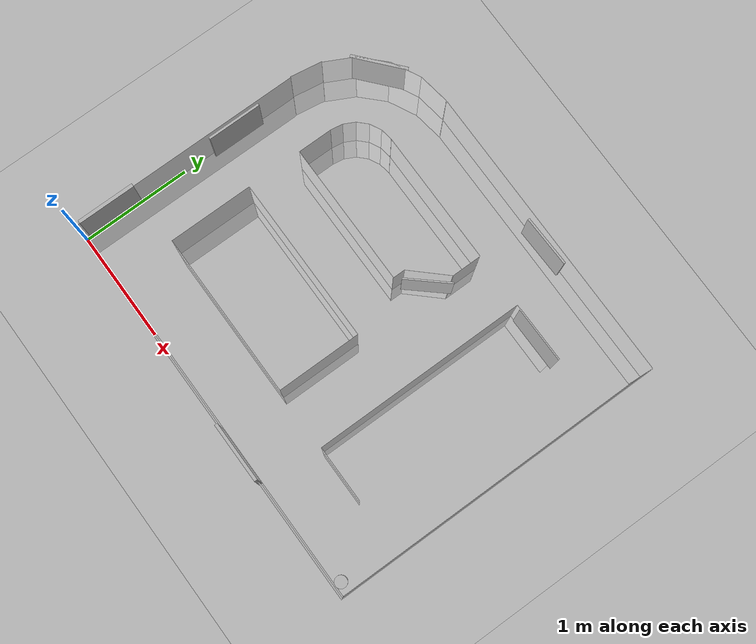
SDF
<sdf version="1.6">
 <world name="default">
  <light name="sun" type="directional">
   <pose>0 0 10 0 -0 0</pose>
   <diffuse>0.8 0.8 0.8 1</diffuse>
   <specular>0.1 0.1 0.1 1</specular>
   <attenuation>
    <range>1000</range>
    <constant>0.9</constant>
    <linear>0.01</linear>
    <quadratic>0.001</quadratic>
   </attenuation>
   <direction>-0.5 0.5 -1</direction>
  </light>
  <model name="ground_plane">
   <static>1</static>
   <link name="link">
    <collision name="collision">
     <geometry><plane><normal>0 0 1</normal><size>100 100</size></plane></geometry>
     <surface><friction><ode><mu>100</mu><mu2>50</mu2></ode></friction></surface>
    </collision>
    <visual name="visual">
     <cast_shadows>0</cast_shadows>
     <geometry><plane><normal>0 0 1</normal><size>100 100</size></plane></geometry>
     <material>
      <script><uri>file://media/materials/scripts/gazebo.material</uri><name>Gazebo/Grey</name></script>
     </material>
    </visual>
   </link>
  </model>
  <model name="wall_0">
   <static>1</static>
   <link name="link">
    <collision name="collision"><geometry><box><size>2.1336 0.001 1</size></box></geometry></collision>
    <visual name="visual">
     <geometry><box><size>2.1336 0.001 1</size></box></geometry>
     <material>
      <script><name>Gazebo/White</name><uri>file://media/materials/scripts/gazebo.material</uri></script>
     </material>
    </visual>
   </link>
   <pose>0.002379 1.06455 0 0 -0 1.5708</pose>
  </model>
  <model name="wall_1">
   <static>1</static>
   <link name="link">
    <collision name="collision"><geometry><box><size>0.286088 0.001 1</size></box></geometry></collision>
    <visual name="visual">
     <geometry><box><size>0.286088 0.001 1</size></box></geometry>
     <material>
      <script><name>Gazebo/White</name><uri>file://media/materials/scripts/gazebo.material</uri></script>
     </material>
    </visual>
   </link>
   <pose>0.018586 2.27627 0 0 -0 1.41372</pose>
  </model>
  <model name="wall_2">
   <static>1</static>
   <link name="link">
    <collision name="collision"><geometry><box><size>0.286088 0.001 1</size></box></geometry></collision>
    <visual name="visual">
     <geometry><box><size>0.286088 0.001 1</size></box></geometry>
     <material>
      <script><name>Gazebo/White</name><uri>file://media/materials/scripts/gazebo.material</uri></script>
     </material>
    </visual>
   </link>
   <pose>0.109695 2.54362 0 0 -0 1.09956</pose>
  </model>
  <model name="wall_3">
   <static>1</static>
   <link name="link">
    <collision name="collision"><geometry><box><size>0.286088 0.001 1</size></box></geometry></collision>
    <visual name="visual">
     <geometry><box><size>0.286088 0.001 1</size></box></geometry>
     <material>
      <script><name>Gazebo/White</name><uri>file://media/materials/scripts/gazebo.material</uri></script>
     </material>
    </visual>
   </link>
   <pose>0.275783 2.77222 0 0 -0 0.785398</pose>
  </model>
  <model name="wall_4">
   <static>1</static>
   <link name="link">
    <collision name="collision"><geometry><box><size>0.286088 0.001 1</size></box></geometry></collision>
    <visual name="visual">
     <geometry><box><size>0.286088 0.001 1</size></box></geometry>
     <material>
      <script><name>Gazebo/White</name><uri>file://media/materials/scripts/gazebo.material</uri></script>
     </material>
    </visual>
   </link>
   <pose>0.504383 2.93831 0 0 -0 0.471239</pose>
  </model>
  <model name="wall_5">
   <static>1</static>
   <link name="link">
    <collision name="collision"><geometry><box><size>0.286088 0.001 1</size></box></geometry></collision>
    <visual name="visual">
     <geometry><box><size>0.286088 0.001 1</size></box></geometry>
     <material>
      <script><name>Gazebo/White</name><uri>file://media/materials/scripts/gazebo.material</uri></script>
     </material>
    </visual>
   </link>
   <pose>0.773119 3.02563 0 0 -0 0.15708</pose>
  </model>
  <model name="wall_6">
   <static>1</static>
   <link name="link">
    <collision name="collision"><geometry><box><size>2.73394 0.001 1</size></box></geometry></collision>
    <visual name="visual">
     <geometry><box><size>2.73394 0.001 1</size></box></geometry>
     <material>
      <script><name>Gazebo/White</name><uri>file://media/materials/scripts/gazebo.material</uri></script>
     </material>
    </visual>
   </link>
   <pose>2.286 3.04801 0 0 -0 0</pose>
  </model>
  <model name="wall_7">
   <static>1</static>
   <link name="link">
    <collision name="collision"><geometry><box><size>3.04801 0.001 1</size></box></geometry></collision>
    <visual name="visual">
     <geometry><box><size>3.04801 0.001 1</size></box></geometry>
     <material>
      <script><name>Gazebo/White</name><uri>file://media/materials/scripts/gazebo.material</uri></script>
     </material>
    </visual>
   </link>
   <pose>3.65761 1.524 0 0 0 -1.5708</pose>
  </model>
  <model name="wall_8">
   <static>1</static>
   <link name="link">
    <collision name="collision"><geometry><box><size>3.65761 0.001 1</size></box></geometry></collision>
    <visual name="visual">
     <geometry><box><size>3.65761 0.001 1</size></box></geometry>
     <material>
      <script><name>Gazebo/White</name><uri>file://media/materials/scripts/gazebo.material</uri></script>
     </material>
    </visual>
   </link>
   <pose>1.8288 0 0 0 0 -3.14159</pose>
  </model>
  <model name="wall_9">
   <static>1</static>
   <link name="link">
    <collision name="collision"><geometry><box><size>0.762002 0.001 1</size></box></geometry></collision>
    <visual name="visual">
     <geometry><box><size>0.762002 0.001 1</size></box></geometry>
     <material>
      <script><name>Gazebo/White</name><uri>file://media/materials/scripts/gazebo.material</uri></script>
     </material>
    </visual>
   </link>
   <pose>0.558801 0.939802 0 0 -0 1.5708</pose>
  </model>
  <model name="wall_10">
   <static>1</static>
   <link name="link">
    <collision name="collision"><geometry><box><size>1.4986 0.001 1</size></box></geometry></collision>
    <visual name="visual">
     <geometry><box><size>1.4986 0.001 1</size></box></geometry>
     <material>
      <script><name>Gazebo/White</name><uri>file://media/materials/scripts/gazebo.material</uri></script>
     </material>
    </visual>
   </link>
   <pose>1.3081 1.3208 0 0 -0 0</pose>
  </model>
  <model name="wall_11">
   <static>1</static>
   <link name="link">
    <collision name="collision"><geometry><box><size>0.762002 0.001 1</size></box></geometry></collision>
    <visual name="visual">
     <geometry><box><size>0.762002 0.001 1</size></box></geometry>
     <material>
      <script><name>Gazebo/White</name><uri>file://media/materials/scripts/gazebo.material</uri></script>
     </material>
    </visual>
   </link>
   <pose>2.0574 0.939802 0 0 0 -1.5708</pose>
  </model>
  <model name="wall_12">
   <static>1</static>
   <link name="link">
    <collision name="collision"><geometry><box><size>1.4986 0.001 1</size></box></geometry></collision>
    <visual name="visual">
     <geometry><box><size>1.4986 0.001 1</size></box></geometry>
     <material>
      <script><name>Gazebo/White</name><uri>file://media/materials/scripts/gazebo.material</uri></script>
     </material>
    </visual>
   </link>
   <pose>1.3081 0.558801 0 0 0 -3.14159</pose>
  </model>
  <model name="wall_13">
   <static>1</static>
   <link name="link">
    <collision name="collision"><geometry><box><size>0.31008 0.001 1</size></box></geometry></collision>
    <visual name="visual">
     <geometry><box><size>0.31008 0.001 1</size></box></geometry>
     <material>
      <script><name>Gazebo/White</name><uri>file://media/materials/scripts/gazebo.material</uri></script>
     </material>
    </visual>
   </link>
   <pose>0.558801 1.98244 0 0 -0 1.5708</pose>
  </model>
  <model name="wall_14">
   <static>1</static>
   <link name="link">
    <collision name="collision"><geometry><box><size>0.111256 0.001 1</size></box></geometry></collision>
    <visual name="visual">
     <geometry><box><size>0.111256 0.001 1</size></box></geometry>
     <material>
      <script><name>Gazebo/White</name><uri>file://media/materials/scripts/gazebo.material</uri></script>
     </material>
    </visual>
   </link>
   <pose>0.567503 2.18855 0 0 -0 1.41372</pose>
  </model>
  <model name="wall_15">
   <static>1</static>
   <link name="link">
    <collision name="collision"><geometry><box><size>0.111256 0.001 1</size></box></geometry></collision>
    <visual name="visual">
     <geometry><box><size>0.111256 0.001 1</size></box></geometry>
     <material>
      <script><name>Gazebo/White</name><uri>file://media/materials/scripts/gazebo.material</uri></script>
     </material>
    </visual>
   </link>
   <pose>0.60146 2.29306 0 0 -0 1.09956</pose>
  </model>
  <model name="wall_16">
   <static>1</static>
   <link name="link">
    <collision name="collision"><geometry><box><size>0.111256 0.001 1</size></box></geometry></collision>
    <visual name="visual">
     <geometry><box><size>0.111256 0.001 1</size></box></geometry>
     <material>
      <script><name>Gazebo/White</name><uri>file://media/materials/scripts/gazebo.material</uri></script>
     </material>
    </visual>
   </link>
   <pose>0.66605 2.38196 0 0 -0 0.785398</pose>
  </model>
  <model name="wall_17">
   <static>1</static>
   <link name="link">
    <collision name="collision"><geometry><box><size>0.111256 0.001 1</size></box></geometry></collision>
    <visual name="visual">
     <geometry><box><size>0.111256 0.001 1</size></box></geometry>
     <material>
      <script><name>Gazebo/White</name><uri>file://media/materials/scripts/gazebo.material</uri></script>
     </material>
    </visual>
   </link>
   <pose>0.75495 2.44655 0 0 -0 0.471239</pose>
  </model>
  <model name="wall_18">
   <static>1</static>
   <link name="link">
    <collision name="collision"><geometry><box><size>0.111256 0.001 1</size></box></geometry></collision>
    <visual name="visual">
     <geometry><box><size>0.111256 0.001 1</size></box></geometry>
     <material>
      <script><name>Gazebo/White</name><uri>file://media/materials/scripts/gazebo.material</uri></script>
     </material>
    </visual>
   </link>
   <pose>0.859458 2.4805 0 0 -0 0.15708</pose>
  </model>
  <model name="wall_19">
   <static>1</static>
   <link name="link">
    <collision name="collision"><geometry><box><size>1.20275 0.001 1</size></box></geometry></collision>
    <visual name="visual">
     <geometry><box><size>1.20275 0.001 1</size></box></geometry>
     <material>
      <script><name>Gazebo/White</name><uri>file://media/materials/scripts/gazebo.material</uri></script>
     </material>
    </visual>
   </link>
   <pose>1.51793 2.48921 0 0 -0 0</pose>
  </model>
  <model name="wall_20">
   <static>1</static>
   <link name="link">
    <collision name="collision"><geometry><box><size>0.268802 0.001 1</size></box></geometry></collision>
    <visual name="visual">
     <geometry><box><size>0.268802 0.001 1</size></box></geometry>
     <material>
      <script><name>Gazebo/White</name><uri>file://media/materials/scripts/gazebo.material</uri></script>
     </material>
    </visual>
   </link>
   <pose>2.12215 2.34852 0 0 0 -1.5708</pose>
  </model>
  <model name="wall_21">
   <static>1</static>
   <link name="link">
    <collision name="collision"><geometry><box><size>0.394961 0.001 1</size></box></geometry></collision>
    <visual name="visual">
     <geometry><box><size>0.394961 0.001 1</size></box></geometry>
     <material>
      <script><name>Gazebo/White</name><uri>file://media/materials/scripts/gazebo.material</uri></script>
     </material>
    </visual>
   </link>
   <pose>1.9892 2.07579 0 0 0 -2.31917</pose>
  </model>
  <model name="wall_22">
   <static>1</static>
   <link name="link">
    <collision name="collision"><geometry><box><size>0.11846 0.001 1</size></box></geometry></collision>
    <visual name="visual">
     <geometry><box><size>0.11846 0.001 1</size></box></geometry>
     <material>
      <script><name>Gazebo/White</name><uri>file://media/materials/scripts/gazebo.material</uri></script>
     </material>
    </visual>
   </link>
   <pose>1.8542 1.87611 0 0 0 -1.5708</pose>
  </model>
  <model name="wall_23">
   <static>1</static>
   <link name="link">
    <collision name="collision"><geometry><box><size>1.2954 0.001 1</size></box></geometry></collision>
    <visual name="visual">
     <geometry><box><size>1.2954 0.001 1</size></box></geometry>
     <material>
      <script><name>Gazebo/White</name><uri>file://media/materials/scripts/gazebo.material</uri></script>
     </material>
    </visual>
   </link>
   <pose>1.2065 1.82168 0 0 0 -3.14159</pose>
  </model>
  <model name="wall_24">
   <static>1</static>
   <link name="link">
    <collision name="collision"><geometry><box><size>0.508001 0.001 1</size></box></geometry></collision>
    <visual name="visual">
     <geometry><box><size>0.508001 0.001 1</size></box></geometry>
     <material>
      <script><name>Gazebo/White</name><uri>file://media/materials/scripts/gazebo.material</uri></script>
     </material>
    </visual>
   </link>
   <pose>2.87021 2.48921 0 0 -0 0</pose>
  </model>
  <model name="wall_25">
   <static>1</static>
   <link name="link">
    <collision name="collision"><geometry><box><size>0.508001 0.001 1</size></box></geometry></collision>
    <visual name="visual">
     <geometry><box><size>0.508001 0.001 1</size></box></geometry>
     <material>
      <script><name>Gazebo/White</name><uri>file://media/materials/scripts/gazebo.material</uri></script>
     </material>
    </visual>
   </link>
   <pose>2.87021 0.558801 0 0 0 -3.14159</pose>
  </model>
  <model name="wall_26">
   <static>1</static>
   <link name="link">
    <collision name="collision"><geometry><box><size>1.9304 0.001 1</size></box></geometry></collision>
    <visual name="visual">
     <geometry><box><size>1.9304 0.001 1</size></box></geometry>
     <material>
      <script><name>Gazebo/White</name><uri>file://media/materials/scripts/gazebo.material</uri></script>
     </material>
    </visual>
   </link>
   <pose>2.6162 1.524 0 0 -0 1.5708</pose>
  </model>
  <gravity>0 0 -9.8</gravity>
  <magnetic_field>6e-06 2.3e-05 -4.2e-05</magnetic_field>
  <atmosphere type="adiabatic"/>
  <physics name="default_physics" default="0" type="ode">
   <max_step_size>0.001</max_step_size>
   <real_time_factor>1</real_time_factor>
   <real_time_update_rate>1000</real_time_update_rate>
  </physics>
  <scene><ambient>0.4 0.4 0.4 1</ambient><background>0.7 0.7 0.7 1</background><shadows>1</shadows></scene>
  <spherical_coordinates>
   <surface_model>EARTH_WGS84</surface_model>
   <latitude_deg>0</latitude_deg>
   <longitude_deg>0</longitude_deg>
   <elevation>0</elevation>
   <heading_deg>0</heading_deg>
  </spherical_coordinates>
  <model name="beer">
   <link name="link">
    <pose>0 0 0.115 0 -0 0</pose>
    <inertial>
     <mass>0.39</mass>
     <inertia><ixx>0.00058</ixx><ixy>0</ixy><ixz>0</ixz><iyy>0.00058</iyy><iyz>0</iyz><izz>0.00019</izz></inertia>
    </inertial>
    <collision name="collision">
     <geometry><cylinder><radius>0.055</radius><length>0.23</length></cylinder></geometry>
    </collision>
    <visual name="visual">
     <geometry><cylinder><radius>0.055</radius><length>0.23</length></cylinder></geometry>
     <material>
      <script>
       <uri>model://beer/materials/scripts</uri>
       <uri>model://beer/materials/textures</uri>
       <name>Beer/Diffuse</name>
      </script>
     </material>
    </visual>
   </link>
   <pose>3.5463 0.07082 -2e-06 -1e-06 -0 2.24965</pose>
  </model>
  <model name="Color Tutorial Model_3">
   <static>1</static>
   <link name="robot_link">
    <collision name="body_collision">
     <geometry><box><size>0.0281481 0.543897 0.543897</size></box></geometry>
    </collision>
    <visual name="body_visual">
     <geometry><box><size>0.0281481 0.543897 0.543897</size></box></geometry>
     <material>
      <script>
       <uri>model://vendor2/materials/scripts</uri>
       <uri>model://vendor2/materials/textures</uri>
       <name>giraffe</name>
      </script>
     </material>
    </visual>
   </link>
   <pose>2.25669 -0.003143 0.274286 0 -0 1.57036</pose>
  </model>
  <model name="Color Tutorial Model_7">
   <static>1</static>
   <link name="robot_link">
    <collision name="body_collision">
     <geometry><box><size>0.02044 0.491307 0.491307</size></box></geometry>
    </collision>
    <visual name="body_visual">
     <geometry><box><size>0.02044 0.491307 0.491307</size></box></geometry>
     <material>
      <script>
       <uri>model://vendor4/materials/scripts</uri>
       <uri>model://vendor4/materials/textures</uri>
       <name>horse</name>
      </script>
     </material>
    </visual>
   </link>
   <pose>0.036493 1.53862 0.25828 0 -0 0</pose>
  </model>
  <model name="Color Tutorial Model_0">
   <static>1</static>
   <link name="robot_link">
    <collision name="body_collision">
     <geometry><box><size>0.026105 0.494387 0.494387</size></box></geometry>
    </collision>
    <visual name="body_visual">
     <geometry><box><size>0.026105 0.494387 0.494387</size></box></geometry>
     <material>
      <script>
       <uri>model://vendor6/materials/scripts</uri>
       <uri>model://vendor6/materials/textures</uri>
       <name>bear</name>
      </script>
     </material>
    </visual>
   </link>
   <pose>0.323238 2.79896 0.250226 0 0 -0.856941</pose>
  </model>
  <model name="Color Tutorial Model">
   <static>1</static>
   <link name="robot_link">
    <collision name="body_collision">
     <geometry><box><size>0.0311499 0.524047 0.524047</size></box></geometry>
    </collision>
    <visual name="body_visual">
     <geometry><box><size>0.0311499 0.524047 0.524047</size></box></geometry>
     <material>
      <script>
       <uri>model://vendor3/materials/scripts</uri>
       <uri>model://vendor3/materials/textures</uri>
       <name>cow</name>
      </script>
     </material>
    </visual>
   </link>
   <pose>0.000917 0.301946 0.271113 0 -0 0</pose>
  </model>
  <model name="Color Tutorial Model_1">
   <static>1</static>
   <link name="robot_link">
    <collision name="body_collision">
     <geometry><box><size>0.013532 0.419009 0.419009</size></box></geometry>
    </collision>
    <visual name="body_visual">
     <geometry><box><size>0.013532 0.419009 0.419009</size></box></geometry>
     <material>
      <script>
       <uri>model://vendor5/materials/scripts</uri>
       <uri>model://vendor5/materials/textures</uri>
       <name>elephant</name>
      </script>
     </material>
    </visual>
   </link>
   <pose>2.03958 2.02775 0.312431 0 0 -0.720458</pose>
  </model>
  <model name="Color Tutorial Model_2">
   <static>1</static>
   <link name="robot_link">
    <collision name="body_collision">
     <geometry><box><size>0.012215 0.503134 0.503134</size></box></geometry>
    </collision>
    <visual name="body_visual">
     <geometry><box><size>0.012215 0.503134 0.503134</size></box></geometry>
     <material>
      <script>
       <uri>model://vendor7/materials/scripts</uri>
       <uri>model://vendor7/materials/textures</uri>
       <name>cat</name>
      </script>
     </material>
    </visual>
   </link>
   <pose>2.9121 2.48053 0.289317 0 0 -1.56234</pose>
  </model>
  <model name="Color Tutorial Model_5">
   <static>1</static>
   <link name="robot_link">
    <collision name="body_collision">
     <geometry><box><size>0.0174529 0.462862 0.462862</size></box></geometry>
    </collision>
    <visual name="body_visual">
     <geometry><box><size>0.0174529 0.462862 0.462862</size></box></geometry>
     <material>
      <script>
       <uri>model://vendor1/materials/scripts</uri>
       <uri>model://vendor1/materials/textures</uri>
       <name>bird</name>
      </script>
     </material>
    </visual>
   </link>
   <pose>2.34259 2.98451 0.317536 0 0 -1.54287</pose>
  </model>
 </world>
</sdf>
